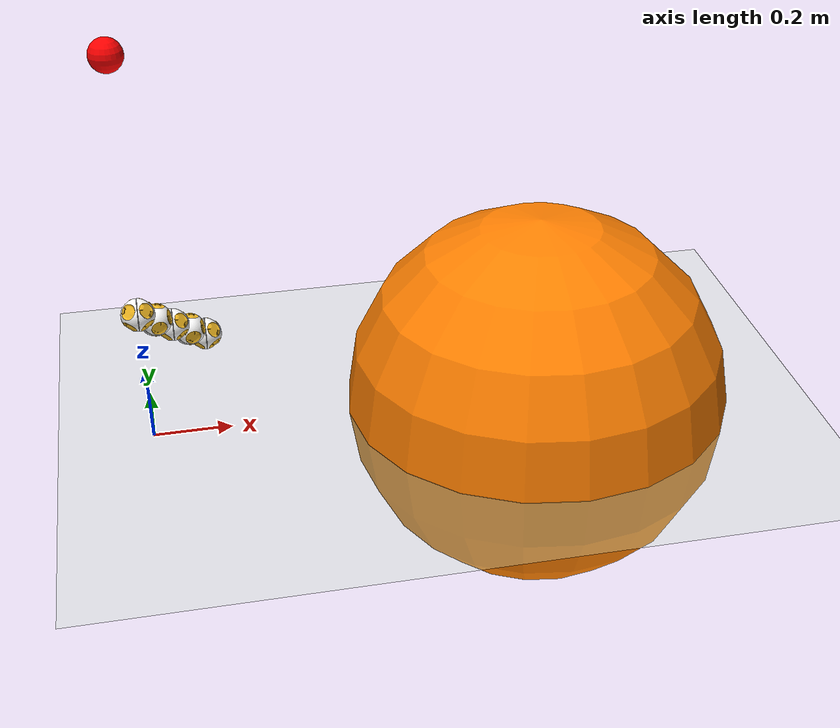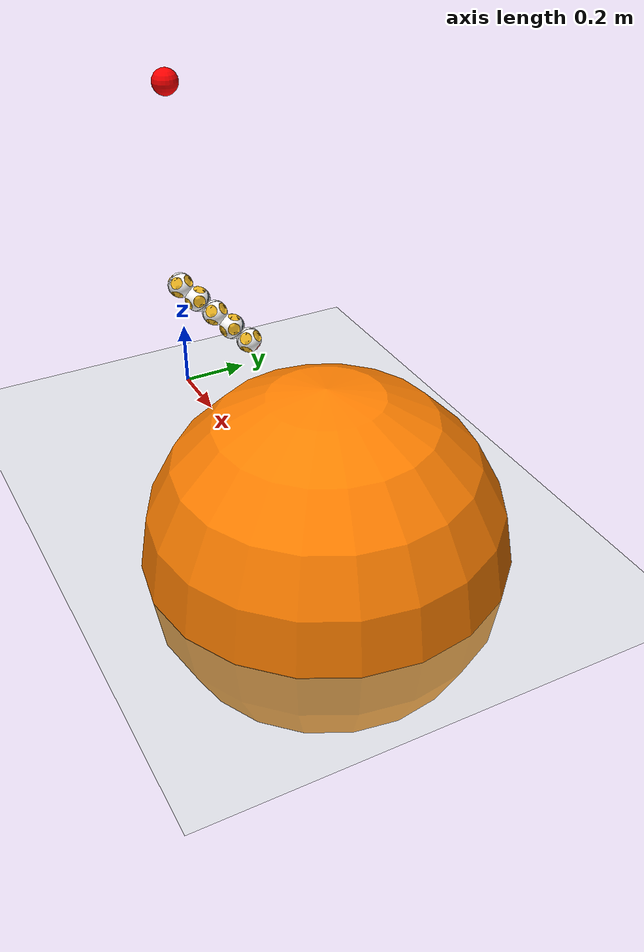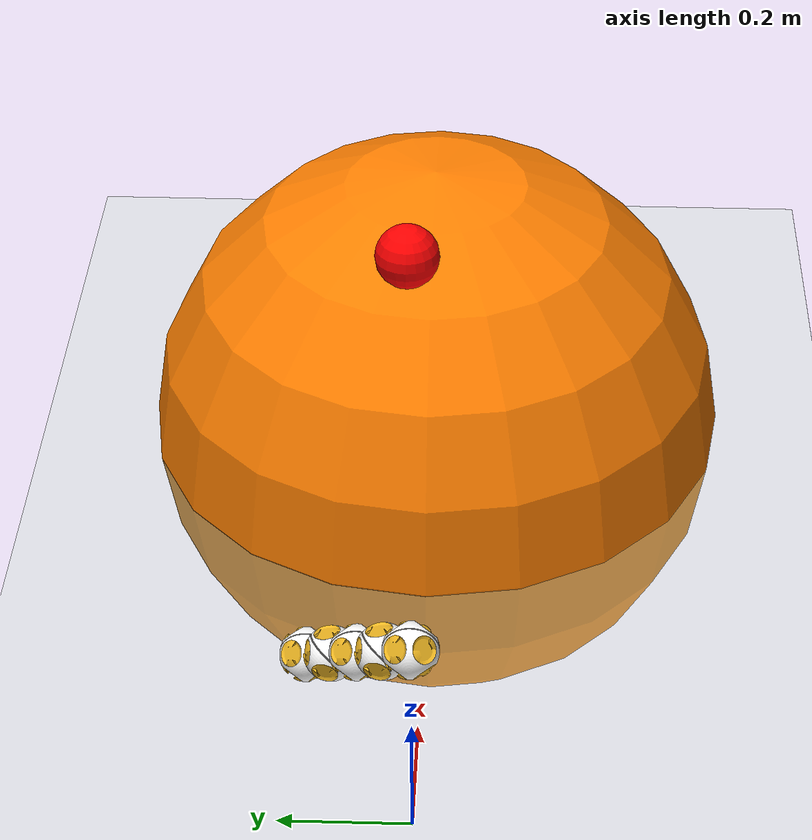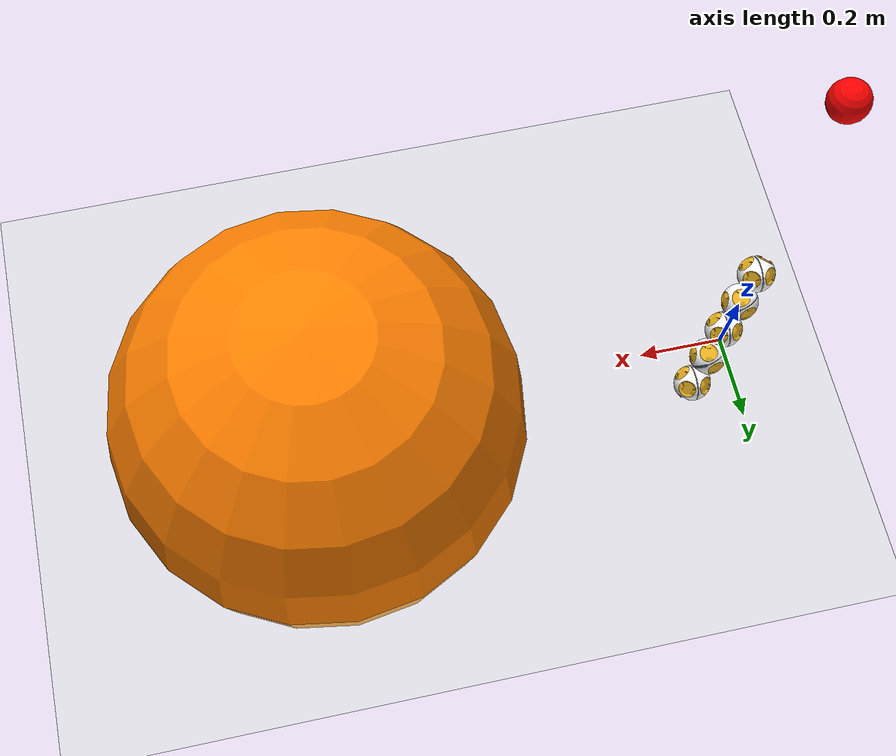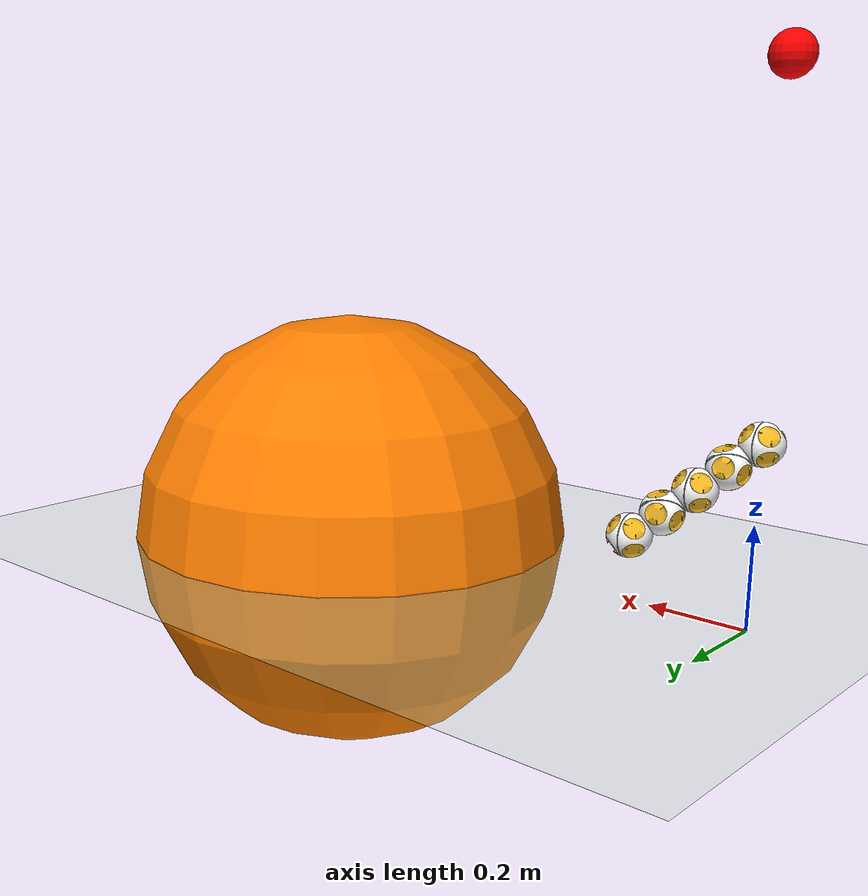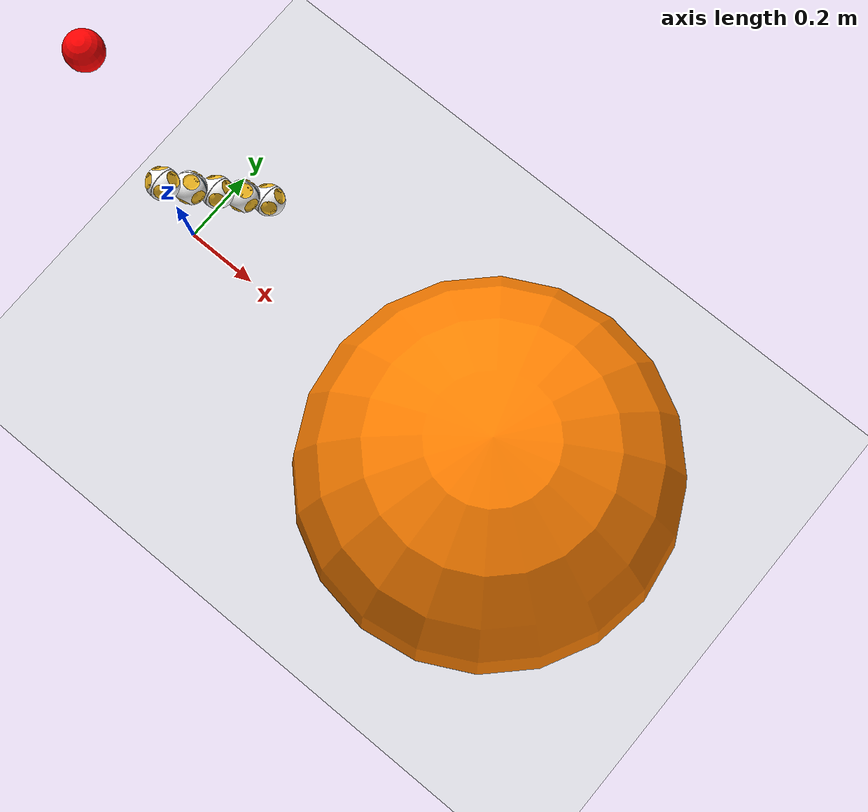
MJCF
<mujoco model="cellrobot(v1.0)">
    <compiler angle="radian" coordinate="local" meshdir="meshes" strippath="false" texturedir="textures"/>
    <option gravity="0 0 -9.81" integrator="RK4" timestep="0.001"/>

    <size nconmax="250" njmax="795" nstack="631875"/>

    <default>
        <geom conaffinity="1" condim="3" friction="1 0.5 0.5" margin="0.001"/>
        <mesh scale="1 1 1"/>
        <joint armature=".01" damping="0.2" limited="true"/>

        <default class="detacher">
            <geom conaffinity="1" condim="3" friction="1 0.5 0.5" margin="0.001" pos="0 0 0" rgba="0.93 0.71 0.13 1"
                  type="mesh"/>
        </default>
        <default class="cell">
            <geom conaffinity="1" condim="3" friction="1 0.5 0.5" margin="0.001" type="mesh"/>

        </default>

    </default>
    <asset>
        <mesh file="cell_gear/shell_gear.STL" name="cell_half_gear"/>
        <mesh file="cell_gear/detacher1.STL" name="detacher1"/>
        <mesh file="cell_gear/detacher2.STL" name="detacher2"/>
        <mesh file="cell_gear/detacher3.STL" name="detacher3"/>
        <mesh file="cell_gear/detacher4.STL" name="detacher4"/>
        <mesh file="cell_gear/circle_gear.STL" name="circle_gear"/>
        <mesh file="cell_gear/led_gear.STL" name="led_gear"/>

        <mesh file="cell_motor/shell_motor.STL" name="cell_half_motor"/>
        <mesh file="cell_motor/detacher5.STL" name="detacher5"/>
        <mesh file="cell_motor/detacher6.STL" name="detacher6"/>
        <mesh file="cell_motor/detacher7.STL" name="detacher7"/>
        <mesh file="cell_motor/detacher8.STL" name="detacher8"/>
        <mesh file="cell_motor/circle_motor.STL" name="circle_motor"/>
        <mesh file="cell_motor/led_motor.STL" name="led_motor"/>

        <texture builtin="checker" height="100" name="floor_tex" rgb1=".2 .3 .4" rgb2=".1 .2 .3" type="2d" width="100"/>
        <texture builtin="checker" height="100" name="texplane" rgb1="0 0 0" rgb2="0.8 0.8 0.8" type="2d" width="100"/>
        <texture file="block.png" gridlayout=".U..LFRB.D.." gridsize="3 4" name="texture:object" type="cube"/>

        <material name="floor_mat" reflectance="0.5" shininess="0.8" specular="0.7" texrepeat="10 10"
                  texture="floor_tex"/>
        <material name="MatPlane" reflectance="0.5" shininess="1" specular="1" texrepeat="30 30" texture="texplane"/>
        <material name="material:object" reflectance="0" shininess="0" specular="1" texture="texture:object"/>
    </asset>

    <visual>
        <map fogend="3" fogstart="1.5"/>
        <quality shadowsize="20480"/>
    </visual>

    <contact>
        <exclude body1="cell1_1" body2="cell1_2"/>
        <exclude body1="cell2_1" body2="cell2_2"/>
        <exclude body1="cell3_1" body2="cell3_2"/>
        <exclude body1="cell4_1" body2="cell4_2"/>
        <exclude body1="cell0_1" body2="cell1_2"/>
        <exclude body1="cell1_1" body2="cell2_2"/>
        <exclude body1="cell2_1" body2="cell3_2"/>
        <exclude body1="cell3_1" body2="cell4_2"/>
    </contact>

    <equality>
        <weld body1="cell0_1" body2="cell1_2"/>
        <weld body1="cell1_1" body2="cell2_2"/>
        <weld body1="cell2_1" body2="cell3_2"/>
        <weld body1="cell3_1" body2="cell4_2"/>
    </equality>

    <worldbody>

        <light cutoff="100" diffuse="1 1 1" dir="-0 0 -1.3" directional="true" exponent="1" pos="0 0 1.3"
               specular=".1 .1 .1"/>

        <camera axisangle="2 2 -2 1" mode="fixed" name="main1" pos="2 2 2" target="torso"/>

        <geom conaffinity="1" condim="3" material="MatPlane" name="floor" pos="0 0 0" rgba="0.8 0.9 0.8 1"
              size="15 15 15" type="plane"/>

        <site name="target1" pos="1 0 0" rgba="1 0.5 0 1" size="0.5 " type="sphere"/>
        <site name="target2" pos="0 0 1" rgba="1 0 0 1" size="0.04 " type="sphere"/>
        <body euler="0 1.5808 0" name="torso" pos="0  0  0.35">
            <geom name="torso_geom" pos="0  0  0" size="0.02" type="sphere"/>

            <body name="cell0_1" pos="0 0 -0.001">
                <inertial
                        fullinertia="5.338593e-05 5.2989770000000003e-05 6.634227000000001e-05 4.3267e-07 1.1089e-06 2.2068200000000003e-06"
                        mass="0.09814" pos="-0.0004 -0.00079 0.009519999999999999"/>
                <geom class="cell" mesh="cell_half_gear" pos="0  0  0" rgba="1 1 1 1"/>
                <geom class="detacher" mesh="detacher1" rgba="1 0.42 0.42 1"/>
                <geom class="detacher" mesh="detacher2"/>
                <geom class="detacher" mesh="detacher3"/>
                <geom class="detacher" mesh="detacher4"/>
                <geom class="cell" mesh="circle_gear" pos="0  0  0" rgba="0 0 0 1"/>
                <geom class="cell" mesh="led_gear" pos="0  0  0" rgba="0.53 0.81 0.98 1"/>
                <body name="cell0_2" pos="0 0 0">
                    <site name="cell0" pos="0 0 0 " size="0.001 0.001 0.001"/>
                    <joint axis="0 0 1" limited="false" name="joint:cell0" pos="0 0 -0.001"/>
                    <inertial
                            fullinertia="5.363084e-05 5.412367e-05 5.157385e-05 2.1730000000000002e-07 4.8619e-07 4.5697000000000005e-07"
                            mass="0.1346" pos="0.00027 0.00011999999999999999 -0.01269"/>
                    <geom class="cell" mesh="cell_half_motor" pos="0  0  0" rgba="1 1 1 1"/>
                    <geom class="detacher" mesh="detacher5"/>
                    <geom class="detacher" mesh="detacher6"/>
                    <geom class="detacher" mesh="detacher7"/>
                    <geom class="detacher" mesh="detacher8"/>
                    <geom class="cell" mesh="circle_motor" pos="0  0  0" rgba="0 0 0 1"/>
                    <geom class="cell" mesh="led_motor" pos="0  0  0" rgba="0.53 0.81 0.98 1"/>
                </body>
                <body name="cell1_2" pos="0.04096758 0.04096758 0.03896092" quat="0.0 0.57738155 0.57738155 0.57728771">
                    <inertial
                            fullinertia="5.363084e-05 5.412367e-05 5.157385e-05 2.1730000000000002e-07 4.8619e-07 4.5697000000000005e-07"
                            mass="0.1346" pos="0.00027 0.00011999999999999999 -0.01269"/>
                    <geom class="cell" mesh="cell_half_motor" pos="0  0  0" rgba="1 1 1 1"/>
                    <geom class="detacher" mesh="detacher5"/>
                    <geom class="detacher" mesh="detacher6"/>
                    <geom class="detacher" mesh="detacher7"/>
                    <geom class="detacher" mesh="detacher8"/>
                    <geom class="cell" mesh="circle_motor" pos="0  0  0" rgba="0 0 0 1"/>
                    <geom class="cell" mesh="led_motor" pos="0  0  0" rgba="0.53 0.81 0.98 1"/>
                    <body name="cell1_1" pos="0 0 0">
                        <site name="cell1" pos="0 0 0 " size="0.001 0.001 0.001"/>
                        <joint axis="0 0 1" limited="false" name="joint:cell1" pos="0 0 -0.001"/>
                        <inertial
                                fullinertia="5.338593e-05 5.2989770000000003e-05 6.634227000000001e-05 4.3267e-07 1.1089e-06 2.2068200000000003e-06"
                                mass="0.09814" pos="-0.0004 -0.00079 0.009519999999999999"/>
                        <geom class="cell" mesh="cell_half_gear" pos="0  0  0" rgba="1 1 1 1"/>
                        <geom class="detacher" mesh="detacher1" rgba="1 0.42 0.42 1"/>
                        <geom class="detacher" mesh="detacher2"/>
                        <geom class="detacher" mesh="detacher3"/>
                        <geom class="detacher" mesh="detacher4"/>
                        <geom class="cell" mesh="circle_gear" pos="0  0  0" rgba="0 0 0 1"/>
                        <geom class="cell" mesh="led_gear" pos="0  0  0" rgba="0.53 0.81 0.98 1"/>
                        <body name="cell2_2" pos="0.04096758 0.04096758 0.03896092"
                              quat="0.0 0.57738155 0.57738155 0.57728771">
                            <inertial
                                    fullinertia="5.363084e-05 5.412367e-05 5.157385e-05 2.1730000000000002e-07 4.8619e-07 4.5697000000000005e-07"
                                    mass="0.1346" pos="0.00027 0.00011999999999999999 -0.01269"/>
                            <geom class="cell" mesh="cell_half_motor" pos="0  0  0" rgba="1 1 1 1"/>
                            <geom class="detacher" mesh="detacher5"/>
                            <geom class="detacher" mesh="detacher6"/>
                            <geom class="detacher" mesh="detacher7"/>
                            <geom class="detacher" mesh="detacher8"/>
                            <geom class="cell" mesh="circle_motor" pos="0  0  0" rgba="0 0 0 1"/>
                            <geom class="cell" mesh="led_motor" pos="0  0  0" rgba="0.53 0.81 0.98 1"/>
                            <body name="cell2_1" pos="0 0 0">
                                <site name="cell2" pos="0 0 0 " size="0.001 0.001 0.001"/>
                                <joint axis="0 0 1" limited="false" name="joint:cell2" pos="0 0 -0.001"/>
                                <inertial
                                        fullinertia="5.338593e-05 5.2989770000000003e-05 6.634227000000001e-05 4.3267e-07 1.1089e-06 2.2068200000000003e-06"
                                        mass="0.09814" pos="-0.0004 -0.00079 0.009519999999999999"/>
                                <geom class="cell" mesh="cell_half_gear" pos="0  0  0" rgba="1 1 1 1"/>
                                <geom class="detacher" mesh="detacher1" rgba="1 0.42 0.42 1"/>
                                <geom class="detacher" mesh="detacher2"/>
                                <geom class="detacher" mesh="detacher3"/>
                                <geom class="detacher" mesh="detacher4"/>
                                <geom class="cell" mesh="circle_gear" pos="0  0  0" rgba="0 0 0 1"/>
                                <geom class="cell" mesh="led_gear" pos="0  0  0" rgba="0.53 0.81 0.98 1"/>
                                <body name="cell3_2" pos="0.04096758 0.04096758 0.03896092"
                                      quat="0.0 0.57738155 0.57738155 0.57728771">
                                    <inertial
                                            fullinertia="5.363084e-05 5.412367e-05 5.157385e-05 2.1730000000000002e-07 4.8619e-07 4.5697000000000005e-07"
                                            mass="0.1346" pos="0.00027 0.00011999999999999999 -0.01269"/>
                                    <geom class="cell" mesh="cell_half_motor" pos="0  0  0" rgba="1 1 1 1"/>
                                    <geom class="detacher" mesh="detacher5"/>
                                    <geom class="detacher" mesh="detacher6"/>
                                    <geom class="detacher" mesh="detacher7"/>
                                    <geom class="detacher" mesh="detacher8"/>
                                    <geom class="cell" mesh="circle_motor" pos="0  0  0" rgba="0 0 0 1"/>
                                    <geom class="cell" mesh="led_motor" pos="0  0  0" rgba="0.53 0.81 0.98 1"/>
                                    <body name="cell3_1" pos="0 0 0">
                                        <site name="cell3" pos="0 0 0 " size="0.001 0.001 0.001"/>
                                        <joint axis="0 0 1" limited="false" name="joint:cell3" pos="0 0 -0.001"/>
                                        <inertial
                                                fullinertia="5.338593e-05 5.2989770000000003e-05 6.634227000000001e-05 4.3267e-07 1.1089e-06 2.2068200000000003e-06"
                                                mass="0.09814" pos="-0.0004 -0.00079 0.009519999999999999"/>
                                        <geom class="cell" mesh="cell_half_gear" pos="0  0  0" rgba="1 1 1 1"/>
                                        <geom class="detacher" mesh="detacher1" rgba="1 0.42 0.42 1"/>
                                        <geom class="detacher" mesh="detacher2"/>
                                        <geom class="detacher" mesh="detacher3"/>
                                        <geom class="detacher" mesh="detacher4"/>
                                        <geom class="cell" mesh="circle_gear" pos="0  0  0" rgba="0 0 0 1"/>
                                        <geom class="cell" mesh="led_gear" pos="0  0  0" rgba="0.53 0.81 0.98 1"/>
                                        <body name="cell4_2" pos="0.04096758 0.04096758 0.03896092"
                                              quat="0.0 0.57738155 0.57738155 0.57728771">
                                            <inertial
                                                    fullinertia="5.363084e-05 5.412367e-05 5.157385e-05 2.1730000000000002e-07 4.8619e-07 4.5697000000000005e-07"
                                                    mass="0.1346" pos="0.00027 0.00011999999999999999 -0.01269"/>
                                            <geom class="cell" mesh="cell_half_motor" pos="0  0  0" rgba="1 1 1 1"/>
                                            <geom class="detacher" mesh="detacher5"/>
                                            <geom class="detacher" mesh="detacher6"/>
                                            <geom class="detacher" mesh="detacher7"/>
                                            <geom class="detacher" mesh="detacher8"/>
                                            <geom class="cell" mesh="circle_motor" pos="0  0  0" rgba="0 0 0 1"/>
                                            <geom class="cell" mesh="led_motor" pos="0  0  0" rgba="0.53 0.81 0.98 1"/>
                                            <body name="cell4_1" pos="0 0 0">
                                                <site name="cell4" pos="0 0 0 " size="0.001 0.001 0.001"/>
                                                <joint axis="0 0 1" limited="false" name="joint:cell4"
                                                       pos="0 0 -0.001"/>
                                                <inertial
                                                        fullinertia="5.338593e-05 5.2989770000000003e-05 6.634227000000001e-05 4.3267e-07 1.1089e-06 2.2068200000000003e-06"
                                                        mass="0.09814" pos="-0.0004 -0.00079 0.009519999999999999"/>
                                                <geom class="cell" mesh="cell_half_gear" pos="0  0  0" rgba="1 1 1 1"/>
                                                <geom class="detacher" mesh="detacher1" rgba="1 0.42 0.42 1"/>
                                                <geom class="detacher" mesh="detacher2"/>
                                                <geom class="detacher" mesh="detacher3"/>
                                                <geom class="detacher" mesh="detacher4"/>
                                                <geom class="cell" mesh="circle_gear" pos="0  0  0" rgba="0 0 0 1"/>
                                                <geom class="cell" mesh="led_gear" pos="0  0  0"
                                                      rgba="0.53 0.81 0.98 1"/>
                                            </body>
                                        </body>
                                    </body>
                                </body>
                            </body>
                        </body>
                    </body>
                </body>
            </body>
        </body>
    </worldbody>

    <actuator>

        <motor ctrllimited="true" ctrlrange="-1.0 1.0" gear="100" joint="joint:cell0"/>
        <motor ctrllimited="true" ctrlrange="-1.0 1.0" gear="10" joint="joint:cell1"/>
        <motor ctrllimited="true" ctrlrange="-1.0 1.0" gear="10" joint="joint:cell2"/>
        <motor ctrllimited="true" ctrlrange="-1.0 1.0" gear="10" joint="joint:cell3"/>
        <motor ctrllimited="true" ctrlrange="-1.0 1.0" gear="10" joint="joint:cell4"/>
    </actuator>
    <sensor>

        <torque name="cell0_toq" site="cell0"/>
        <torque name="cell1_toq" site="cell1"/>
        <torque name="cell2_toq" site="cell2"/>
        <torque name="cell3_toq" site="cell3"/>
        <torque name="cell4_toq" site="cell4"/>
    </sensor>
</mujoco>
